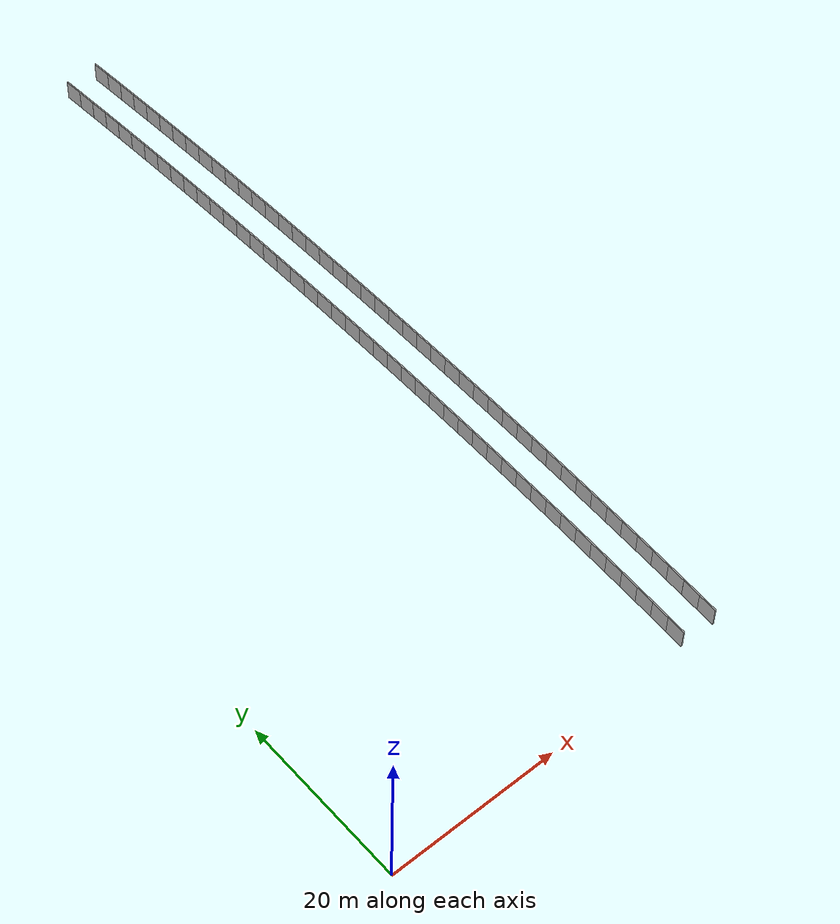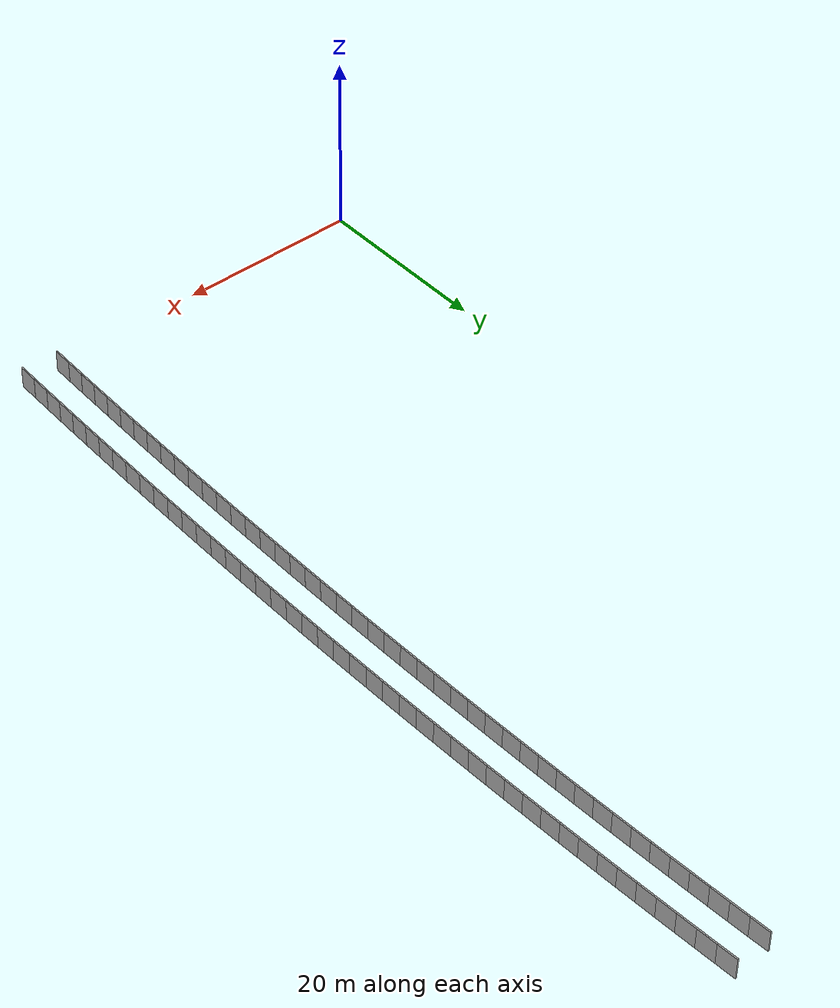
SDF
<?xml version="1.0" ?>
<sdf version="1.6">
  <model name="sps_2312">
    <pose frame="">0 0 0 0 -0 0</pose>
    <static>1</static>
    <self_collide>0</self_collide>
    <allow_auto_disable>0</allow_auto_disable>
    <link name="Wall4572">
      <kinematic>0</kinematic>
      <gravity>1</gravity>
      <self_collide>0</self_collide>
      <collision name="collision">
        <geometry>
          <box>
            <size>2.25462 0.15 2.5</size>
          </box>
        </geometry>
        <pose frame="">0 0 0 0 -0 0</pose>
      </collision>
      <visual name="visual">
        <geometry>
          <box>
            <size>2.25462 0.15 2.5</size>
          </box>
        </geometry>
        <pose frame="">0 0 0 0 -0 0</pose>
        <cast_shadows>1</cast_shadows>
        <transparency>0.0</transparency>
      </visual>
      <pose frame="">41.8405 1.61171 1.25 0 -0 1.53495</pose>
    </link>
    <link name="Wall4573">
      <kinematic>0</kinematic>
      <gravity>1</gravity>
      <self_collide>0</self_collide>
      <collision name="collision">
        <geometry>
          <box>
            <size>2.25468 0.15 2.5</size>
          </box>
        </geometry>
        <pose frame="">0 0 0 0 -0 0</pose>
      </collision>
      <visual name="visual">
        <geometry>
          <box>
            <size>2.25468 0.15 2.5</size>
          </box>
        </geometry>
        <pose frame="">0 0 0 0 -0 0</pose>
        <cast_shadows>1</cast_shadows>
        <transparency>0.0</transparency>
      </visual>
      <pose frame="">41.9187 3.865 1.25 0 -0 1.53728</pose>
    </link>
    <link name="Wall4574">
      <kinematic>0</kinematic>
      <gravity>1</gravity>
      <self_collide>0</self_collide>
      <collision name="collision">
        <geometry>
          <box>
            <size>2.25469 0.15 2.5</size>
          </box>
        </geometry>
        <pose frame="">0 0 0 0 -0 0</pose>
      </collision>
      <visual name="visual">
        <geometry>
          <box>
            <size>2.25469 0.15 2.5</size>
          </box>
        </geometry>
        <pose frame="">0 0 0 0 -0 0</pose>
        <cast_shadows>1</cast_shadows>
        <transparency>0.0</transparency>
      </visual>
      <pose frame="">41.9915 6.11851 1.25 0 -0 1.53966</pose>
    </link>
    <link name="Wall4575">
      <kinematic>0</kinematic>
      <gravity>1</gravity>
      <self_collide>0</self_collide>
      <collision name="collision">
        <geometry>
          <box>
            <size>2.25472 0.15 2.5</size>
          </box>
        </geometry>
        <pose frame="">0 0 0 0 -0 0</pose>
      </collision>
      <visual name="visual">
        <geometry>
          <box>
            <size>2.25472 0.15 2.5</size>
          </box>
        </geometry>
        <pose frame="">0 0 0 0 -0 0</pose>
        <cast_shadows>1</cast_shadows>
        <transparency>0.0</transparency>
      </visual>
      <pose frame="">42.059 8.37221 1.25 0 -0 1.54204</pose>
    </link>
    <link name="Wall4576">
      <kinematic>0</kinematic>
      <gravity>1</gravity>
      <self_collide>0</self_collide>
      <collision name="collision">
        <geometry>
          <box>
            <size>2.25457 0.15 2.5</size>
          </box>
        </geometry>
        <pose frame="">0 0 0 0 -0 0</pose>
      </collision>
      <visual name="visual">
        <geometry>
          <box>
            <size>2.25457 0.15 2.5</size>
          </box>
        </geometry>
        <pose frame="">0 0 0 0 -0 0</pose>
        <cast_shadows>1</cast_shadows>
        <transparency>0.0</transparency>
      </visual>
      <pose frame="">42.1211 10.626 1.25 0 -0 1.54445</pose>
    </link>
    <link name="Wall4577">
      <kinematic>0</kinematic>
      <gravity>1</gravity>
      <self_collide>0</self_collide>
      <collision name="collision">
        <geometry>
          <box>
            <size>2.25468 0.15 2.5</size>
          </box>
        </geometry>
        <pose frame="">0 0 0 0 -0 0</pose>
      </collision>
      <visual name="visual">
        <geometry>
          <box>
            <size>2.25468 0.15 2.5</size>
          </box>
        </geometry>
        <pose frame="">0 0 0 0 -0 0</pose>
        <cast_shadows>1</cast_shadows>
        <transparency>0.0</transparency>
      </visual>
      <pose frame="">42.1779 12.8799 1.25 0 -0 1.54676</pose>
    </link>
    <link name="Wall4578">
      <kinematic>0</kinematic>
      <gravity>1</gravity>
      <self_collide>0</self_collide>
      <collision name="collision">
        <geometry>
          <box>
            <size>2.25449 0.15 2.5</size>
          </box>
        </geometry>
        <pose frame="">0 0 0 0 -0 0</pose>
      </collision>
      <visual name="visual">
        <geometry>
          <box>
            <size>2.25449 0.15 2.5</size>
          </box>
        </geometry>
        <pose frame="">0 0 0 0 -0 0</pose>
        <cast_shadows>1</cast_shadows>
        <transparency>0.0</transparency>
      </visual>
      <pose frame="">42.2294 15.1339 1.25 0 -0 1.54922</pose>
    </link>
    <link name="Wall4579">
      <kinematic>0</kinematic>
      <gravity>1</gravity>
      <self_collide>0</self_collide>
      <collision name="collision">
        <geometry>
          <box>
            <size>2.25462 0.15 2.5</size>
          </box>
        </geometry>
        <pose frame="">0 0 0 0 -0 0</pose>
      </collision>
      <visual name="visual">
        <geometry>
          <box>
            <size>2.25462 0.15 2.5</size>
          </box>
        </geometry>
        <pose frame="">0 0 0 0 -0 0</pose>
        <cast_shadows>1</cast_shadows>
        <transparency>0.0</transparency>
      </visual>
      <pose frame="">42.2753 17.388 1.25 0 -0 1.55166</pose>
    </link>
    <link name="Wall4580">
      <kinematic>0</kinematic>
      <gravity>1</gravity>
      <self_collide>0</self_collide>
      <collision name="collision">
        <geometry>
          <box>
            <size>2.25453 0.15 2.5</size>
          </box>
        </geometry>
        <pose frame="">0 0 0 0 -0 0</pose>
      </collision>
      <visual name="visual">
        <geometry>
          <box>
            <size>2.25453 0.15 2.5</size>
          </box>
        </geometry>
        <pose frame="">0 0 0 0 -0 0</pose>
        <cast_shadows>1</cast_shadows>
        <transparency>0.0</transparency>
      </visual>
      <pose frame="">42.3158 19.6422 1.25 0 -0 1.55401</pose>
    </link>
    <link name="Wall4581">
      <kinematic>0</kinematic>
      <gravity>1</gravity>
      <self_collide>0</self_collide>
      <collision name="collision">
        <geometry>
          <box>
            <size>2.25482 0.15 2.5</size>
          </box>
        </geometry>
        <pose frame="">0 0 0 0 -0 0</pose>
      </collision>
      <visual name="visual">
        <geometry>
          <box>
            <size>2.25482 0.15 2.5</size>
          </box>
        </geometry>
        <pose frame="">0 0 0 0 -0 0</pose>
        <cast_shadows>1</cast_shadows>
        <transparency>0.0</transparency>
      </visual>
      <pose frame="">42.3511 21.8966 1.25 0 -0 1.55626</pose>
    </link>
    <link name="Wall4582">
      <kinematic>0</kinematic>
      <gravity>1</gravity>
      <self_collide>0</self_collide>
      <collision name="collision">
        <geometry>
          <box>
            <size>2.25456 0.15 2.5</size>
          </box>
        </geometry>
        <pose frame="">0 0 0 0 -0 0</pose>
      </collision>
      <visual name="visual">
        <geometry>
          <box>
            <size>2.25456 0.15 2.5</size>
          </box>
        </geometry>
        <pose frame="">0 0 0 0 -0 0</pose>
        <cast_shadows>1</cast_shadows>
        <transparency>0.0</transparency>
      </visual>
      <pose frame="">42.3812 24.1511 1.25 0 -0 1.55864</pose>
    </link>
    <link name="Wall4583">
      <kinematic>0</kinematic>
      <gravity>1</gravity>
      <self_collide>0</self_collide>
      <collision name="collision">
        <geometry>
          <box>
            <size>2.2545 0.15 2.5</size>
          </box>
        </geometry>
        <pose frame="">0 0 0 0 -0 0</pose>
      </collision>
      <visual name="visual">
        <geometry>
          <box>
            <size>2.2545 0.15 2.5</size>
          </box>
        </geometry>
        <pose frame="">0 0 0 0 -0 0</pose>
        <cast_shadows>1</cast_shadows>
        <transparency>0.0</transparency>
      </visual>
      <pose frame="">42.4058 26.4055 1.25 0 -0 1.56113</pose>
    </link>
    <link name="Wall4584">
      <kinematic>0</kinematic>
      <gravity>1</gravity>
      <self_collide>0</self_collide>
      <collision name="collision">
        <geometry>
          <box>
            <size>2.2547 0.15 2.5</size>
          </box>
        </geometry>
        <pose frame="">0 0 0 0 -0 0</pose>
      </collision>
      <visual name="visual">
        <geometry>
          <box>
            <size>2.2547 0.15 2.5</size>
          </box>
        </geometry>
        <pose frame="">0 0 0 0 -0 0</pose>
        <cast_shadows>1</cast_shadows>
        <transparency>0.0</transparency>
      </visual>
      <pose frame="">42.425 28.66 1.25 0 -0 1.56335</pose>
    </link>
    <link name="Wall4585">
      <kinematic>0</kinematic>
      <gravity>1</gravity>
      <self_collide>0</self_collide>
      <collision name="collision">
        <geometry>
          <box>
            <size>2.25442 0.15 2.5</size>
          </box>
        </geometry>
        <pose frame="">0 0 0 0 -0 0</pose>
      </collision>
      <visual name="visual">
        <geometry>
          <box>
            <size>2.25442 0.15 2.5</size>
          </box>
        </geometry>
        <pose frame="">0 0 0 0 -0 0</pose>
        <cast_shadows>1</cast_shadows>
        <transparency>0.0</transparency>
      </visual>
      <pose frame="">42.439 30.9145 1.25 0 -0 1.56581</pose>
    </link>
    <link name="Wall4586">
      <kinematic>0</kinematic>
      <gravity>1</gravity>
      <self_collide>0</self_collide>
      <collision name="collision">
        <geometry>
          <box>
            <size>2.25483 0.15 2.5</size>
          </box>
        </geometry>
        <pose frame="">0 0 0 0 -0 0</pose>
      </collision>
      <visual name="visual">
        <geometry>
          <box>
            <size>2.25483 0.15 2.5</size>
          </box>
        </geometry>
        <pose frame="">0 0 0 0 -0 0</pose>
        <cast_shadows>1</cast_shadows>
        <transparency>0.0</transparency>
      </visual>
      <pose frame="">42.4476 33.1691 1.25 0 -0 1.56822</pose>
    </link>
    <link name="Wall4587">
      <kinematic>0</kinematic>
      <gravity>1</gravity>
      <self_collide>0</self_collide>
      <collision name="collision">
        <geometry>
          <box>
            <size>2.25458 0.15 2.5</size>
          </box>
        </geometry>
        <pose frame="">0 0 0 0 -0 0</pose>
      </collision>
      <visual name="visual">
        <geometry>
          <box>
            <size>2.25458 0.15 2.5</size>
          </box>
        </geometry>
        <pose frame="">0 0 0 0 -0 0</pose>
        <cast_shadows>1</cast_shadows>
        <transparency>0.0</transparency>
      </visual>
      <pose frame="">42.4508 35.4238 1.25 0 -0 1.57053</pose>
    </link>
    <link name="Wall4588">
      <kinematic>0</kinematic>
      <gravity>1</gravity>
      <self_collide>0</self_collide>
      <collision name="collision">
        <geometry>
          <box>
            <size>2.25458 0.15 2.5</size>
          </box>
        </geometry>
        <pose frame="">0 0 0 0 -0 0</pose>
      </collision>
      <visual name="visual">
        <geometry>
          <box>
            <size>2.25458 0.15 2.5</size>
          </box>
        </geometry>
        <pose frame="">0 0 0 0 -0 0</pose>
        <cast_shadows>1</cast_shadows>
        <transparency>0.0</transparency>
      </visual>
      <pose frame="">42.4486 37.6784 1.25 0 -0 1.57302</pose>
    </link>
    <link name="Wall4589">
      <kinematic>0</kinematic>
      <gravity>1</gravity>
      <self_collide>0</self_collide>
      <collision name="collision">
        <geometry>
          <box>
            <size>2.25466 0.15 2.5</size>
          </box>
        </geometry>
        <pose frame="">0 0 0 0 -0 0</pose>
      </collision>
      <visual name="visual">
        <geometry>
          <box>
            <size>2.25466 0.15 2.5</size>
          </box>
        </geometry>
        <pose frame="">0 0 0 0 -0 0</pose>
        <cast_shadows>1</cast_shadows>
        <transparency>0.0</transparency>
      </visual>
      <pose frame="">42.441 39.933 1.25 0 -0 1.57532</pose>
    </link>
    <link name="Wall4590">
      <kinematic>0</kinematic>
      <gravity>1</gravity>
      <self_collide>0</self_collide>
      <collision name="collision">
        <geometry>
          <box>
            <size>2.25463 0.15 2.5</size>
          </box>
        </geometry>
        <pose frame="">0 0 0 0 -0 0</pose>
      </collision>
      <visual name="visual">
        <geometry>
          <box>
            <size>2.25463 0.15 2.5</size>
          </box>
        </geometry>
        <pose frame="">0 0 0 0 -0 0</pose>
        <cast_shadows>1</cast_shadows>
        <transparency>0.0</transparency>
      </visual>
      <pose frame="">42.4282 42.1876 1.25 0 -0 1.57765</pose>
    </link>
    <link name="Wall4591">
      <kinematic>0</kinematic>
      <gravity>1</gravity>
      <self_collide>0</self_collide>
      <collision name="collision">
        <geometry>
          <box>
            <size>2.25449 0.15 2.5</size>
          </box>
        </geometry>
        <pose frame="">0 0 0 0 -0 0</pose>
      </collision>
      <visual name="visual">
        <geometry>
          <box>
            <size>2.25449 0.15 2.5</size>
          </box>
        </geometry>
        <pose frame="">0 0 0 0 -0 0</pose>
        <cast_shadows>1</cast_shadows>
        <transparency>0.0</transparency>
      </visual>
      <pose frame="">42.4099 44.4421 1.25 0 -0 1.58011</pose>
    </link>
    <link name="Wall4592">
      <kinematic>0</kinematic>
      <gravity>1</gravity>
      <self_collide>0</self_collide>
      <collision name="collision">
        <geometry>
          <box>
            <size>2.25473 0.15 2.5</size>
          </box>
        </geometry>
        <pose frame="">0 0 0 0 -0 0</pose>
      </collision>
      <visual name="visual">
        <geometry>
          <box>
            <size>2.25473 0.15 2.5</size>
          </box>
        </geometry>
        <pose frame="">0 0 0 0 -0 0</pose>
        <cast_shadows>1</cast_shadows>
        <transparency>0.0</transparency>
      </visual>
      <pose frame="">42.3863 46.6966 1.25 0 -0 1.58241</pose>
    </link>
    <link name="Wall4593">
      <kinematic>0</kinematic>
      <gravity>1</gravity>
      <self_collide>0</self_collide>
      <collision name="collision">
        <geometry>
          <box>
            <size>2.25444 0.15 2.5</size>
          </box>
        </geometry>
        <pose frame="">0 0 0 0 -0 0</pose>
      </collision>
      <visual name="visual">
        <geometry>
          <box>
            <size>2.25444 0.15 2.5</size>
          </box>
        </geometry>
        <pose frame="">0 0 0 0 -0 0</pose>
        <cast_shadows>1</cast_shadows>
        <transparency>0.0</transparency>
      </visual>
      <pose frame="">42.3573 48.951 1.25 0 -0 1.58498</pose>
    </link>
    <link name="Wall4594">
      <kinematic>0</kinematic>
      <gravity>1</gravity>
      <self_collide>0</self_collide>
      <collision name="collision">
        <geometry>
          <box>
            <size>2.2547 0.15 2.5</size>
          </box>
        </geometry>
        <pose frame="">0 0 0 0 -0 0</pose>
      </collision>
      <visual name="visual">
        <geometry>
          <box>
            <size>2.2547 0.15 2.5</size>
          </box>
        </geometry>
        <pose frame="">0 0 0 0 -0 0</pose>
        <cast_shadows>1</cast_shadows>
        <transparency>0.0</transparency>
      </visual>
      <pose frame="">42.3228 51.2053 1.25 0 -0 1.5872</pose>
    </link>
    <link name="Wall4595">
      <kinematic>0</kinematic>
      <gravity>1</gravity>
      <self_collide>0</self_collide>
      <collision name="collision">
        <geometry>
          <box>
            <size>2.25442 0.15 2.5</size>
          </box>
        </geometry>
        <pose frame="">0 0 0 0 -0 0</pose>
      </collision>
      <visual name="visual">
        <geometry>
          <box>
            <size>2.25442 0.15 2.5</size>
          </box>
        </geometry>
        <pose frame="">0 0 0 0 -0 0</pose>
        <cast_shadows>1</cast_shadows>
        <transparency>0.0</transparency>
      </visual>
      <pose frame="">42.2832 53.4595 1.25 0 -0 1.58953</pose>
    </link>
    <link name="Wall4596">
      <kinematic>0</kinematic>
      <gravity>1</gravity>
      <self_collide>0</self_collide>
      <collision name="collision">
        <geometry>
          <box>
            <size>2.25472 0.15 2.5</size>
          </box>
        </geometry>
        <pose frame="">0 0 0 0 -0 0</pose>
      </collision>
      <visual name="visual">
        <geometry>
          <box>
            <size>2.25472 0.15 2.5</size>
          </box>
        </geometry>
        <pose frame="">0 0 0 0 -0 0</pose>
        <cast_shadows>1</cast_shadows>
        <transparency>0.0</transparency>
      </visual>
      <pose frame="">42.2382 55.7136 1.25 0 -0 1.59199</pose>
    </link>
    <link name="Wall4597">
      <kinematic>0</kinematic>
      <gravity>1</gravity>
      <self_collide>0</self_collide>
      <collision name="collision">
        <geometry>
          <box>
            <size>2.25459 0.15 2.5</size>
          </box>
        </geometry>
        <pose frame="">0 0 0 0 -0 0</pose>
      </collision>
      <visual name="visual">
        <geometry>
          <box>
            <size>2.25459 0.15 2.5</size>
          </box>
        </geometry>
        <pose frame="">0 0 0 0 -0 0</pose>
        <cast_shadows>1</cast_shadows>
        <transparency>0.0</transparency>
      </visual>
      <pose frame="">42.1878 57.9677 1.25 0 -0 1.5943</pose>
    </link>
    <link name="Wall4598">
      <kinematic>0</kinematic>
      <gravity>1</gravity>
      <self_collide>0</self_collide>
      <collision name="collision">
        <geometry>
          <box>
            <size>2.25455 0.15 2.5</size>
          </box>
        </geometry>
        <pose frame="">0 0 0 0 -0 0</pose>
      </collision>
      <visual name="visual">
        <geometry>
          <box>
            <size>2.25455 0.15 2.5</size>
          </box>
        </geometry>
        <pose frame="">0 0 0 0 -0 0</pose>
        <cast_shadows>1</cast_shadows>
        <transparency>0.0</transparency>
      </visual>
      <pose frame="">42.132 60.2216 1.25 0 -0 1.59679</pose>
    </link>
    <link name="Wall4599">
      <kinematic>0</kinematic>
      <gravity>1</gravity>
      <self_collide>0</self_collide>
      <collision name="collision">
        <geometry>
          <box>
            <size>2.25475 0.15 2.5</size>
          </box>
        </geometry>
        <pose frame="">0 0 0 0 -0 0</pose>
      </collision>
      <visual name="visual">
        <geometry>
          <box>
            <size>2.25475 0.15 2.5</size>
          </box>
        </geometry>
        <pose frame="">0 0 0 0 -0 0</pose>
        <cast_shadows>1</cast_shadows>
        <transparency>0.0</transparency>
      </visual>
      <pose frame="">42.0708 62.4754 1.25 0 -0 1.59911</pose>
    </link>
    <link name="Wall4600">
      <kinematic>0</kinematic>
      <gravity>1</gravity>
      <self_collide>0</self_collide>
      <collision name="collision">
        <geometry>
          <box>
            <size>2.25466 0.15 2.5</size>
          </box>
        </geometry>
        <pose frame="">0 0 0 0 -0 0</pose>
      </collision>
      <visual name="visual">
        <geometry>
          <box>
            <size>2.25466 0.15 2.5</size>
          </box>
        </geometry>
        <pose frame="">0 0 0 0 -0 0</pose>
        <cast_shadows>1</cast_shadows>
        <transparency>0.0</transparency>
      </visual>
      <pose frame="">42.0044 64.7291 1.25 0 -0 1.60139</pose>
    </link>
    <link name="Wall4601">
      <kinematic>0</kinematic>
      <gravity>1</gravity>
      <self_collide>0</self_collide>
      <collision name="collision">
        <geometry>
          <box>
            <size>2.25459 0.15 2.5</size>
          </box>
        </geometry>
        <pose frame="">0 0 0 0 -0 0</pose>
      </collision>
      <visual name="visual">
        <geometry>
          <box>
            <size>2.25459 0.15 2.5</size>
          </box>
        </geometry>
        <pose frame="">0 0 0 0 -0 0</pose>
        <cast_shadows>1</cast_shadows>
        <transparency>0.0</transparency>
      </visual>
      <pose frame="">41.9326 66.9826 1.25 0 -0 1.60388</pose>
    </link>
    <link name="Wall4602">
      <kinematic>0</kinematic>
      <gravity>1</gravity>
      <self_collide>0</self_collide>
      <collision name="collision">
        <geometry>
          <box>
            <size>2.25464 0.15 2.5</size>
          </box>
        </geometry>
        <pose frame="">0 0 0 0 -0 0</pose>
      </collision>
      <visual name="visual">
        <geometry>
          <box>
            <size>2.25464 0.15 2.5</size>
          </box>
        </geometry>
        <pose frame="">0 0 0 0 -0 0</pose>
        <cast_shadows>1</cast_shadows>
        <transparency>0.0</transparency>
      </visual>
      <pose frame="">41.8555 69.2359 1.25 0 -0 1.60613</pose>
    </link>
    <link name="Wall4603">
      <kinematic>0</kinematic>
      <gravity>1</gravity>
      <self_collide>0</self_collide>
      <collision name="collision">
        <geometry>
          <box>
            <size>2.2546 0.15 2.5</size>
          </box>
        </geometry>
        <pose frame="">0 0 0 0 -0 0</pose>
      </collision>
      <visual name="visual">
        <geometry>
          <box>
            <size>2.2546 0.15 2.5</size>
          </box>
        </geometry>
        <pose frame="">0 0 0 0 -0 0</pose>
        <cast_shadows>1</cast_shadows>
        <transparency>0.0</transparency>
      </visual>
      <pose frame="">41.773 71.489 1.25 0 -0 1.6086</pose>
    </link>
    <link name="Wall4604">
      <kinematic>0</kinematic>
      <gravity>1</gravity>
      <self_collide>0</self_collide>
      <collision name="collision">
        <geometry>
          <box>
            <size>2.25463 0.15 2.5</size>
          </box>
        </geometry>
        <pose frame="">0 0 0 0 -0 0</pose>
      </collision>
      <visual name="visual">
        <geometry>
          <box>
            <size>2.25463 0.15 2.5</size>
          </box>
        </geometry>
        <pose frame="">0 0 0 0 -0 0</pose>
        <cast_shadows>1</cast_shadows>
        <transparency>0.0</transparency>
      </visual>
      <pose frame="">41.6851 73.7419 1.25 0 -0 1.61098</pose>
    </link>
    <link name="Wall4605">
      <kinematic>0</kinematic>
      <gravity>1</gravity>
      <self_collide>0</self_collide>
      <collision name="collision">
        <geometry>
          <box>
            <size>2.25461 0.15 2.5</size>
          </box>
        </geometry>
        <pose frame="">0 0 0 0 -0 0</pose>
      </collision>
      <visual name="visual">
        <geometry>
          <box>
            <size>2.25461 0.15 2.5</size>
          </box>
        </geometry>
        <pose frame="">0 0 0 0 -0 0</pose>
        <cast_shadows>1</cast_shadows>
        <transparency>0.0</transparency>
      </visual>
      <pose frame="">41.5918 75.9946 1.25 0 -0 1.61339</pose>
    </link>
    <link name="Wall4606">
      <kinematic>0</kinematic>
      <gravity>1</gravity>
      <self_collide>0</self_collide>
      <collision name="collision">
        <geometry>
          <box>
            <size>2.25471 0.15 2.5</size>
          </box>
        </geometry>
        <pose frame="">0 0 0 0 -0 0</pose>
      </collision>
      <visual name="visual">
        <geometry>
          <box>
            <size>2.25471 0.15 2.5</size>
          </box>
        </geometry>
        <pose frame="">0 0 0 0 -0 0</pose>
        <cast_shadows>1</cast_shadows>
        <transparency>0.0</transparency>
      </visual>
      <pose frame="">41.4932 78.2471 1.25 0 -0 1.61569</pose>
    </link>
    <link name="Wall4607">
      <kinematic>0</kinematic>
      <gravity>1</gravity>
      <self_collide>0</self_collide>
      <collision name="collision">
        <geometry>
          <box>
            <size>2.25453 0.15 2.5</size>
          </box>
        </geometry>
        <pose frame="">0 0 0 0 -0 0</pose>
      </collision>
      <visual name="visual">
        <geometry>
          <box>
            <size>2.25453 0.15 2.5</size>
          </box>
        </geometry>
        <pose frame="">0 0 0 0 -0 0</pose>
        <cast_shadows>1</cast_shadows>
        <transparency>0.0</transparency>
      </visual>
      <pose frame="">41.3894 80.4993 1.25 0 -0 1.61808</pose>
    </link>
    <link name="Wall4608">
      <kinematic>0</kinematic>
      <gravity>1</gravity>
      <self_collide>0</self_collide>
      <collision name="collision">
        <geometry>
          <box>
            <size>2.25397 0.15 2.5</size>
          </box>
        </geometry>
        <pose frame="">0 0 0 0 -0 0</pose>
      </collision>
      <visual name="visual">
        <geometry>
          <box>
            <size>2.25397 0.15 2.5</size>
          </box>
        </geometry>
        <pose frame="">0 0 0 0 -0 0</pose>
        <cast_shadows>1</cast_shadows>
        <transparency>0.0</transparency>
      </visual>
      <pose frame="">41.2799 82.7509 1.25 0 -0 1.6207</pose>
    </link>
    <link name="Wall4609">
      <kinematic>0</kinematic>
      <gravity>1</gravity>
      <self_collide>0</self_collide>
      <collision name="collision">
        <geometry>
          <box>
            <size>2.2549 0.15 2.5</size>
          </box>
        </geometry>
        <pose frame="">0 0 0 0 -0 0</pose>
      </collision>
      <visual name="visual">
        <geometry>
          <box>
            <size>2.2549 0.15 2.5</size>
          </box>
        </geometry>
        <pose frame="">0 0 0 0 -0 0</pose>
        <cast_shadows>1</cast_shadows>
        <transparency>0.0</transparency>
      </visual>
      <pose frame="">41.1648 85.0024 1.25 0 -0 1.62298</pose>
    </link>
    <link name="Wall4610">
      <kinematic>0</kinematic>
      <gravity>1</gravity>
      <self_collide>0</self_collide>
      <collision name="collision">
        <geometry>
          <box>
            <size>2.25449 0.15 2.5</size>
          </box>
        </geometry>
        <pose frame="">0 0 0 0 -0 0</pose>
      </collision>
      <visual name="visual">
        <geometry>
          <box>
            <size>2.25449 0.15 2.5</size>
          </box>
        </geometry>
        <pose frame="">0 0 0 0 -0 0</pose>
        <cast_shadows>1</cast_shadows>
        <transparency>0.0</transparency>
      </visual>
      <pose frame="">41.0448 87.2539 1.25 0 -0 1.62519</pose>
    </link>
    <link name="Wall4611">
      <kinematic>0</kinematic>
      <gravity>1</gravity>
      <self_collide>0</self_collide>
      <collision name="collision">
        <geometry>
          <box>
            <size>2.25466 0.15 2.5</size>
          </box>
        </geometry>
        <pose frame="">0 0 0 0 -0 0</pose>
      </collision>
      <visual name="visual">
        <geometry>
          <box>
            <size>2.25466 0.15 2.5</size>
          </box>
        </geometry>
        <pose frame="">0 0 0 0 -0 0</pose>
        <cast_shadows>1</cast_shadows>
        <transparency>0.0</transparency>
      </visual>
      <pose frame="">40.9196 89.505 1.25 0 -0 1.62751</pose>
    </link>
    <link name="Wall4612">
      <kinematic>0</kinematic>
      <gravity>1</gravity>
      <self_collide>0</self_collide>
      <collision name="collision">
        <geometry>
          <box>
            <size>2.25457 0.15 2.5</size>
          </box>
        </geometry>
        <pose frame="">0 0 0 0 -0 0</pose>
      </collision>
      <visual name="visual">
        <geometry>
          <box>
            <size>2.25457 0.15 2.5</size>
          </box>
        </geometry>
        <pose frame="">0 0 0 0 -0 0</pose>
        <cast_shadows>1</cast_shadows>
        <transparency>0.0</transparency>
      </visual>
      <pose frame="">40.7889 91.7558 1.25 0 -0 1.63009</pose>
    </link>
    <link name="Wall4613">
      <kinematic>0</kinematic>
      <gravity>1</gravity>
      <self_collide>0</self_collide>
      <collision name="collision">
        <geometry>
          <box>
            <size>2.25481 0.15 2.5</size>
          </box>
        </geometry>
        <pose frame="">0 0 0 0 -0 0</pose>
      </collision>
      <visual name="visual">
        <geometry>
          <box>
            <size>2.25481 0.15 2.5</size>
          </box>
        </geometry>
        <pose frame="">0 0 0 0 -0 0</pose>
        <cast_shadows>1</cast_shadows>
        <transparency>0.0</transparency>
      </visual>
      <pose frame="">40.6528 94.0064 1.25 0 -0 1.63231</pose>
    </link>
    <link name="Wall4614">
      <kinematic>0</kinematic>
      <gravity>1</gravity>
      <self_collide>0</self_collide>
      <collision name="collision">
        <geometry>
          <box>
            <size>2.25442 0.15 2.5</size>
          </box>
        </geometry>
        <pose frame="">0 0 0 0 -0 0</pose>
      </collision>
      <visual name="visual">
        <geometry>
          <box>
            <size>2.25442 0.15 2.5</size>
          </box>
        </geometry>
        <pose frame="">0 0 0 0 -0 0</pose>
        <cast_shadows>1</cast_shadows>
        <transparency>0.0</transparency>
      </visual>
      <pose frame="">40.5115 96.2566 1.25 0 -0 1.63471</pose>
    </link>
    <link name="Wall4615">
      <kinematic>0</kinematic>
      <gravity>1</gravity>
      <self_collide>0</self_collide>
      <collision name="collision">
        <geometry>
          <box>
            <size>2.25459 0.15 2.5</size>
          </box>
        </geometry>
        <pose frame="">0 0 0 0 -0 0</pose>
      </collision>
      <visual name="visual">
        <geometry>
          <box>
            <size>2.25459 0.15 2.5</size>
          </box>
        </geometry>
        <pose frame="">0 0 0 0 -0 0</pose>
        <cast_shadows>1</cast_shadows>
        <transparency>0.0</transparency>
      </visual>
      <pose frame="">40.3648 98.5063 1.25 0 -0 1.63712</pose>
    </link>
    <link name="Wall6297">
      <kinematic>0</kinematic>
      <gravity>1</gravity>
      <self_collide>0</self_collide>
      <collision name="collision">
        <geometry>
          <box>
            <size>2.24485 0.15 2.5</size>
          </box>
        </geometry>
        <pose frame="">0 0 0 0 -0 0</pose>
      </collision>
      <visual name="visual">
        <geometry>
          <box>
            <size>2.24485 0.15 2.5</size>
          </box>
        </geometry>
        <pose frame="">0 0 0 0 -0 0</pose>
        <cast_shadows>1</cast_shadows>
        <transparency>0.0</transparency>
      </visual>
      <pose frame="">37.7038 1.76021 1.25 0 -0 1.5349</pose>
    </link>
    <link name="Wall6298">
      <kinematic>0</kinematic>
      <gravity>1</gravity>
      <self_collide>0</self_collide>
      <collision name="collision">
        <geometry>
          <box>
            <size>2.24467 0.15 2.5</size>
          </box>
        </geometry>
        <pose frame="">0 0 0 0 -0 0</pose>
      </collision>
      <visual name="visual">
        <geometry>
          <box>
            <size>2.24467 0.15 2.5</size>
          </box>
        </geometry>
        <pose frame="">0 0 0 0 -0 0</pose>
        <cast_shadows>1</cast_shadows>
        <transparency>0.0</transparency>
      </visual>
      <pose frame="">37.7816 4.00362 1.25 0 -0 1.53729</pose>
    </link>
    <link name="Wall6299">
      <kinematic>0</kinematic>
      <gravity>1</gravity>
      <self_collide>0</self_collide>
      <collision name="collision">
        <geometry>
          <box>
            <size>2.24487 0.15 2.5</size>
          </box>
        </geometry>
        <pose frame="">0 0 0 0 -0 0</pose>
      </collision>
      <visual name="visual">
        <geometry>
          <box>
            <size>2.24487 0.15 2.5</size>
          </box>
        </geometry>
        <pose frame="">0 0 0 0 -0 0</pose>
        <cast_shadows>1</cast_shadows>
        <transparency>0.0</transparency>
      </visual>
      <pose frame="">37.8542 6.24721 1.25 0 -0 1.53961</pose>
    </link>
    <link name="Wall6300">
      <kinematic>0</kinematic>
      <gravity>1</gravity>
      <self_collide>0</self_collide>
      <collision name="collision">
        <geometry>
          <box>
            <size>2.2447 0.15 2.5</size>
          </box>
        </geometry>
        <pose frame="">0 0 0 0 -0 0</pose>
      </collision>
      <visual name="visual">
        <geometry>
          <box>
            <size>2.2447 0.15 2.5</size>
          </box>
        </geometry>
        <pose frame="">0 0 0 0 -0 0</pose>
        <cast_shadows>1</cast_shadows>
        <transparency>0.0</transparency>
      </visual>
      <pose frame="">37.9214 8.49098 1.25 0 -0 1.54211</pose>
    </link>
    <link name="Wall6301">
      <kinematic>0</kinematic>
      <gravity>1</gravity>
      <self_collide>0</self_collide>
      <collision name="collision">
        <geometry>
          <box>
            <size>2.24498 0.15 2.5</size>
          </box>
        </geometry>
        <pose frame="">0 0 0 0 -0 0</pose>
      </collision>
      <visual name="visual">
        <geometry>
          <box>
            <size>2.24498 0.15 2.5</size>
          </box>
        </geometry>
        <pose frame="">0 0 0 0 -0 0</pose>
        <cast_shadows>1</cast_shadows>
        <transparency>0.0</transparency>
      </visual>
      <pose frame="">37.9831 10.735 1.25 0 -0 1.5445</pose>
    </link>
    <link name="Wall6302">
      <kinematic>0</kinematic>
      <gravity>1</gravity>
      <self_collide>0</self_collide>
      <collision name="collision">
        <geometry>
          <box>
            <size>2.24467 0.15 2.5</size>
          </box>
        </geometry>
        <pose frame="">0 0 0 0 -0 0</pose>
      </collision>
      <visual name="visual">
        <geometry>
          <box>
            <size>2.24467 0.15 2.5</size>
          </box>
        </geometry>
        <pose frame="">0 0 0 0 -0 0</pose>
        <cast_shadows>1</cast_shadows>
        <transparency>0.0</transparency>
      </visual>
      <pose frame="">38.0397 12.9791 1.25 0 -0 1.54673</pose>
    </link>
    <link name="Wall6303">
      <kinematic>0</kinematic>
      <gravity>1</gravity>
      <self_collide>0</self_collide>
      <collision name="collision">
        <geometry>
          <box>
            <size>2.24472 0.15 2.5</size>
          </box>
        </geometry>
        <pose frame="">0 0 0 0 -0 0</pose>
      </collision>
      <visual name="visual">
        <geometry>
          <box>
            <size>2.24472 0.15 2.5</size>
          </box>
        </geometry>
        <pose frame="">0 0 0 0 -0 0</pose>
        <cast_shadows>1</cast_shadows>
        <transparency>0.0</transparency>
      </visual>
      <pose frame="">38.0909 15.2232 1.25 0 -0 1.54923</pose>
    </link>
    <link name="Wall6304">
      <kinematic>0</kinematic>
      <gravity>1</gravity>
      <self_collide>0</self_collide>
      <collision name="collision">
        <geometry>
          <box>
            <size>2.2448 0.15 2.5</size>
          </box>
        </geometry>
        <pose frame="">0 0 0 0 -0 0</pose>
      </collision>
      <visual name="visual">
        <geometry>
          <box>
            <size>2.2448 0.15 2.5</size>
          </box>
        </geometry>
        <pose frame="">0 0 0 0 -0 0</pose>
        <cast_shadows>1</cast_shadows>
        <transparency>0.0</transparency>
      </visual>
      <pose frame="">38.1366 17.4675 1.25 0 -0 1.55157</pose>
    </link>
    <link name="Wall6305">
      <kinematic>0</kinematic>
      <gravity>1</gravity>
      <self_collide>0</self_collide>
      <collision name="collision">
        <geometry>
          <box>
            <size>2.24452 0.15 2.5</size>
          </box>
        </geometry>
        <pose frame="">0 0 0 0 -0 0</pose>
      </collision>
      <visual name="visual">
        <geometry>
          <box>
            <size>2.24452 0.15 2.5</size>
          </box>
        </geometry>
        <pose frame="">0 0 0 0 -0 0</pose>
        <cast_shadows>1</cast_shadows>
        <transparency>0.0</transparency>
      </visual>
      <pose frame="">38.1771 19.7118 1.25 0 -0 1.55394</pose>
    </link>
    <link name="Wall6306">
      <kinematic>0</kinematic>
      <gravity>1</gravity>
      <self_collide>0</self_collide>
      <collision name="collision">
        <geometry>
          <box>
            <size>2.24505 0.15 2.5</size>
          </box>
        </geometry>
        <pose frame="">0 0 0 0 -0 0</pose>
      </collision>
      <visual name="visual">
        <geometry>
          <box>
            <size>2.24505 0.15 2.5</size>
          </box>
        </geometry>
        <pose frame="">0 0 0 0 -0 0</pose>
        <cast_shadows>1</cast_shadows>
        <transparency>0.0</transparency>
      </visual>
      <pose frame="">38.2124 21.9563 1.25 0 -0 1.55628</pose>
    </link>
    <link name="Wall6307">
      <kinematic>0</kinematic>
      <gravity>1</gravity>
      <self_collide>0</self_collide>
      <collision name="collision">
        <geometry>
          <box>
            <size>2.24479 0.15 2.5</size>
          </box>
        </geometry>
        <pose frame="">0 0 0 0 -0 0</pose>
      </collision>
      <visual name="visual">
        <geometry>
          <box>
            <size>2.24479 0.15 2.5</size>
          </box>
        </geometry>
        <pose frame="">0 0 0 0 -0 0</pose>
        <cast_shadows>1</cast_shadows>
        <transparency>0.0</transparency>
      </visual>
      <pose frame="">38.2421 24.201 1.25 0 -0 1.55878</pose>
    </link>
    <link name="Wall6308">
      <kinematic>0</kinematic>
      <gravity>1</gravity>
      <self_collide>0</self_collide>
      <collision name="collision">
        <geometry>
          <box>
            <size>2.24468 0.15 2.5</size>
          </box>
        </geometry>
        <pose frame="">0 0 0 0 -0 0</pose>
      </collision>
      <visual name="visual">
        <geometry>
          <box>
            <size>2.24468 0.15 2.5</size>
          </box>
        </geometry>
        <pose frame="">0 0 0 0 -0 0</pose>
        <cast_shadows>1</cast_shadows>
        <transparency>0.0</transparency>
      </visual>
      <pose frame="">38.2667 26.4456 1.25 0 -0 1.56098</pose>
    </link>
    <link name="Wall6309">
      <kinematic>0</kinematic>
      <gravity>1</gravity>
      <self_collide>0</self_collide>
      <collision name="collision">
        <geometry>
          <box>
            <size>2.24487 0.15 2.5</size>
          </box>
        </geometry>
        <pose frame="">0 0 0 0 -0 0</pose>
      </collision>
      <visual name="visual">
        <geometry>
          <box>
            <size>2.24487 0.15 2.5</size>
          </box>
        </geometry>
        <pose frame="">0 0 0 0 -0 0</pose>
        <cast_shadows>1</cast_shadows>
        <transparency>0.0</transparency>
      </visual>
      <pose frame="">38.2858 28.6903 1.25 0 -0 1.56351</pose>
    </link>
    <link name="Wall6310">
      <kinematic>0</kinematic>
      <gravity>1</gravity>
      <self_collide>0</self_collide>
      <collision name="collision">
        <geometry>
          <box>
            <size>2.2446 0.15 2.5</size>
          </box>
        </geometry>
        <pose frame="">0 0 0 0 -0 0</pose>
      </collision>
      <visual name="visual">
        <geometry>
          <box>
            <size>2.2446 0.15 2.5</size>
          </box>
        </geometry>
        <pose frame="">0 0 0 0 -0 0</pose>
        <cast_shadows>1</cast_shadows>
        <transparency>0.0</transparency>
      </visual>
      <pose frame="">38.2996 30.935 1.25 0 -0 1.56579</pose>
    </link>
    <link name="Wall6311">
      <kinematic>0</kinematic>
      <gravity>1</gravity>
      <self_collide>0</self_collide>
      <collision name="collision">
        <geometry>
          <box>
            <size>2.24482 0.15 2.5</size>
          </box>
        </geometry>
        <pose frame="">0 0 0 0 -0 0</pose>
      </collision>
      <visual name="visual">
        <geometry>
          <box>
            <size>2.24482 0.15 2.5</size>
          </box>
        </geometry>
        <pose frame="">0 0 0 0 -0 0</pose>
        <cast_shadows>1</cast_shadows>
        <transparency>0.0</transparency>
      </visual>
      <pose frame="">38.3082 33.1797 1.25 0 -0 1.56821</pose>
    </link>
    <link name="Wall6312">
      <kinematic>0</kinematic>
      <gravity>1</gravity>
      <self_collide>0</self_collide>
      <collision name="collision">
        <geometry>
          <box>
            <size>2.245 0.15 2.5</size>
          </box>
        </geometry>
        <pose frame="">0 0 0 0 -0 0</pose>
      </collision>
      <visual name="visual">
        <geometry>
          <box>
            <size>2.245 0.15 2.5</size>
          </box>
        </geometry>
        <pose frame="">0 0 0 0 -0 0</pose>
        <cast_shadows>1</cast_shadows>
        <transparency>0.0</transparency>
      </visual>
      <pose frame="">38.3114 35.4246 1.25 0 -0 1.57052</pose>
    </link>
    <link name="Wall6313">
      <kinematic>0</kinematic>
      <gravity>1</gravity>
      <self_collide>0</self_collide>
      <collision name="collision">
        <geometry>
          <box>
            <size>2.24463 0.15 2.5</size>
          </box>
        </geometry>
        <pose frame="">0 0 0 0 -0 0</pose>
      </collision>
      <visual name="visual">
        <geometry>
          <box>
            <size>2.24463 0.15 2.5</size>
          </box>
        </geometry>
        <pose frame="">0 0 0 0 -0 0</pose>
        <cast_shadows>1</cast_shadows>
        <transparency>0.0</transparency>
      </visual>
      <pose frame="">38.3093 37.6694 1.25 0 -0 1.57294</pose>
    </link>
    <link name="Wall6314">
      <kinematic>0</kinematic>
      <gravity>1</gravity>
      <self_collide>0</self_collide>
      <collision name="collision">
        <geometry>
          <box>
            <size>2.24484 0.15 2.5</size>
          </box>
        </geometry>
        <pose frame="">0 0 0 0 -0 0</pose>
      </collision>
      <visual name="visual">
        <geometry>
          <box>
            <size>2.24484 0.15 2.5</size>
          </box>
        </geometry>
        <pose frame="">0 0 0 0 -0 0</pose>
        <cast_shadows>1</cast_shadows>
        <transparency>0.0</transparency>
      </visual>
      <pose frame="">38.3017 39.9141 1.25 0 -0 1.57534</pose>
    </link>
    <link name="Wall6315">
      <kinematic>0</kinematic>
      <gravity>1</gravity>
      <self_collide>0</self_collide>
      <collision name="collision">
        <geometry>
          <box>
            <size>2.24462 0.15 2.5</size>
          </box>
        </geometry>
        <pose frame="">0 0 0 0 -0 0</pose>
      </collision>
      <visual name="visual">
        <geometry>
          <box>
            <size>2.24462 0.15 2.5</size>
          </box>
        </geometry>
        <pose frame="">0 0 0 0 -0 0</pose>
        <cast_shadows>1</cast_shadows>
        <transparency>0.0</transparency>
      </visual>
      <pose frame="">38.289 42.1588 1.25 0 -0 1.57765</pose>
    </link>
    <link name="Wall6316">
      <kinematic>0</kinematic>
      <gravity>1</gravity>
      <self_collide>0</self_collide>
      <collision name="collision">
        <geometry>
          <box>
            <size>2.24491 0.15 2.5</size>
          </box>
        </geometry>
        <pose frame="">0 0 0 0 -0 0</pose>
      </collision>
      <visual name="visual">
        <geometry>
          <box>
            <size>2.24491 0.15 2.5</size>
          </box>
        </geometry>
        <pose frame="">0 0 0 0 -0 0</pose>
        <cast_shadows>1</cast_shadows>
        <transparency>0.0</transparency>
      </visual>
      <pose frame="">38.2708 44.4035 1.25 0 -0 1.58015</pose>
    </link>
    <link name="Wall6317">
      <kinematic>0</kinematic>
      <gravity>1</gravity>
      <self_collide>0</self_collide>
      <collision name="collision">
        <geometry>
          <box>
            <size>2.24478 0.15 2.5</size>
          </box>
        </geometry>
        <pose frame="">0 0 0 0 -0 0</pose>
      </collision>
      <visual name="visual">
        <geometry>
          <box>
            <size>2.24478 0.15 2.5</size>
          </box>
        </geometry>
        <pose frame="">0 0 0 0 -0 0</pose>
        <cast_shadows>1</cast_shadows>
        <transparency>0.0</transparency>
      </visual>
      <pose frame="">38.2472 46.6482 1.25 0 -0 1.58249</pose>
    </link>
    <link name="Wall6318">
      <kinematic>0</kinematic>
      <gravity>1</gravity>
      <self_collide>0</self_collide>
      <collision name="collision">
        <geometry>
          <box>
            <size>2.24479 0.15 2.5</size>
          </box>
        </geometry>
        <pose frame="">0 0 0 0 -0 0</pose>
      </collision>
      <visual name="visual">
        <geometry>
          <box>
            <size>2.24479 0.15 2.5</size>
          </box>
        </geometry>
        <pose frame="">0 0 0 0 -0 0</pose>
        <cast_shadows>1</cast_shadows>
        <transparency>0.0</transparency>
      </visual>
      <pose frame="">38.2183 48.8928 1.25 0 -0 1.58485</pose>
    </link>
    <link name="Wall6319">
      <kinematic>0</kinematic>
      <gravity>1</gravity>
      <self_collide>0</self_collide>
      <collision name="collision">
        <geometry>
          <box>
            <size>2.24469 0.15 2.5</size>
          </box>
        </geometry>
        <pose frame="">0 0 0 0 -0 0</pose>
      </collision>
      <visual name="visual">
        <geometry>
          <box>
            <size>2.24469 0.15 2.5</size>
          </box>
        </geometry>
        <pose frame="">0 0 0 0 -0 0</pose>
        <cast_shadows>1</cast_shadows>
        <transparency>0.0</transparency>
      </visual>
      <pose frame="">38.1841 51.1373 1.25 0 -0 1.58719</pose>
    </link>
    <link name="Wall6320">
      <kinematic>0</kinematic>
      <gravity>1</gravity>
      <self_collide>0</self_collide>
      <collision name="collision">
        <geometry>
          <box>
            <size>2.2446 0.15 2.5</size>
          </box>
        </geometry>
        <pose frame="">0 0 0 0 -0 0</pose>
      </collision>
      <visual name="visual">
        <geometry>
          <box>
            <size>2.2446 0.15 2.5</size>
          </box>
        </geometry>
        <pose frame="">0 0 0 0 -0 0</pose>
        <cast_shadows>1</cast_shadows>
        <transparency>0.0</transparency>
      </visual>
      <pose frame="">38.1446 53.3816 1.25 0 -0 1.58961</pose>
    </link>
    <link name="Wall6321">
      <kinematic>0</kinematic>
      <gravity>1</gravity>
      <self_collide>0</self_collide>
      <collision name="collision">
        <geometry>
          <box>
            <size>2.2447 0.15 2.5</size>
          </box>
        </geometry>
        <pose frame="">0 0 0 0 -0 0</pose>
      </collision>
      <visual name="visual">
        <geometry>
          <box>
            <size>2.2447 0.15 2.5</size>
          </box>
        </geometry>
        <pose frame="">0 0 0 0 -0 0</pose>
        <cast_shadows>1</cast_shadows>
        <transparency>0.0</transparency>
      </visual>
      <pose frame="">38.0998 55.6258 1.25 0 -0 1.5919</pose>
    </link>
    <link name="Wall6322">
      <kinematic>0</kinematic>
      <gravity>1</gravity>
      <self_collide>0</self_collide>
      <collision name="collision">
        <geometry>
          <box>
            <size>2.24483 0.15 2.5</size>
          </box>
        </geometry>
        <pose frame="">0 0 0 0 -0 0</pose>
      </collision>
      <visual name="visual">
        <geometry>
          <box>
            <size>2.24483 0.15 2.5</size>
          </box>
        </geometry>
        <pose frame="">0 0 0 0 -0 0</pose>
        <cast_shadows>1</cast_shadows>
        <transparency>0.0</transparency>
      </visual>
      <pose frame="">38.0496 57.87 1.25 0 -0 1.59443</pose>
    </link>
    <link name="Wall6323">
      <kinematic>0</kinematic>
      <gravity>1</gravity>
      <self_collide>0</self_collide>
      <collision name="collision">
        <geometry>
          <box>
            <size>2.24495 0.15 2.5</size>
          </box>
        </geometry>
        <pose frame="">0 0 0 0 -0 0</pose>
      </collision>
      <visual name="visual">
        <geometry>
          <box>
            <size>2.24495 0.15 2.5</size>
          </box>
        </geometry>
        <pose frame="">0 0 0 0 -0 0</pose>
        <cast_shadows>1</cast_shadows>
        <transparency>0.0</transparency>
      </visual>
      <pose frame="">37.994 60.1142 1.25 0 -0 1.59663</pose>
    </link>
    <link name="Wall6324">
      <kinematic>0</kinematic>
      <gravity>1</gravity>
      <self_collide>0</self_collide>
      <collision name="collision">
        <geometry>
          <box>
            <size>2.24473 0.15 2.5</size>
          </box>
        </geometry>
        <pose frame="">0 0 0 0 -0 0</pose>
      </collision>
      <visual name="visual">
        <geometry>
          <box>
            <size>2.24473 0.15 2.5</size>
          </box>
        </geometry>
        <pose frame="">0 0 0 0 -0 0</pose>
        <cast_shadows>1</cast_shadows>
        <transparency>0.0</transparency>
      </visual>
      <pose frame="">37.9333 62.3582 1.25 0 -0 1.59905</pose>
    </link>
    <link name="Wall6325">
      <kinematic>0</kinematic>
      <gravity>1</gravity>
      <self_collide>0</self_collide>
      <collision name="collision">
        <geometry>
          <box>
            <size>2.24465 0.15 2.5</size>
          </box>
        </geometry>
        <pose frame="">0 0 0 0 -0 0</pose>
      </collision>
      <visual name="visual">
        <geometry>
          <box>
            <size>2.24465 0.15 2.5</size>
          </box>
        </geometry>
        <pose frame="">0 0 0 0 -0 0</pose>
        <cast_shadows>1</cast_shadows>
        <transparency>0.0</transparency>
      </visual>
      <pose frame="">37.8671 64.6019 1.25 0 -0 1.60153</pose>
    </link>
    <link name="Wall6326">
      <kinematic>0</kinematic>
      <gravity>1</gravity>
      <self_collide>0</self_collide>
      <collision name="collision">
        <geometry>
          <box>
            <size>2.245 0.15 2.5</size>
          </box>
        </geometry>
        <pose frame="">0 0 0 0 -0 0</pose>
      </collision>
      <visual name="visual">
        <geometry>
          <box>
            <size>2.245 0.15 2.5</size>
          </box>
        </geometry>
        <pose frame="">0 0 0 0 -0 0</pose>
        <cast_shadows>1</cast_shadows>
        <transparency>0.0</transparency>
      </visual>
      <pose frame="">37.7956 66.8456 1.25 0 -0 1.60386</pose>
    </link>
    <link name="Wall6327">
      <kinematic>0</kinematic>
      <gravity>1</gravity>
      <self_collide>0</self_collide>
      <collision name="collision">
        <geometry>
          <box>
            <size>2.24464 0.15 2.5</size>
          </box>
        </geometry>
        <pose frame="">0 0 0 0 -0 0</pose>
      </collision>
      <visual name="visual">
        <geometry>
          <box>
            <size>2.24464 0.15 2.5</size>
          </box>
        </geometry>
        <pose frame="">0 0 0 0 -0 0</pose>
        <cast_shadows>1</cast_shadows>
        <transparency>0.0</transparency>
      </visual>
      <pose frame="">37.7187 69.0891 1.25 0 -0 1.60626</pose>
    </link>
    <link name="Wall6328">
      <kinematic>0</kinematic>
      <gravity>1</gravity>
      <self_collide>0</self_collide>
      <collision name="collision">
        <geometry>
          <box>
            <size>2.245 0.15 2.5</size>
          </box>
        </geometry>
        <pose frame="">0 0 0 0 -0 0</pose>
      </collision>
      <visual name="visual">
        <geometry>
          <box>
            <size>2.245 0.15 2.5</size>
          </box>
        </geometry>
        <pose frame="">0 0 0 0 -0 0</pose>
        <cast_shadows>1</cast_shadows>
        <transparency>0.0</transparency>
      </visual>
      <pose frame="">37.6366 71.3324 1.25 0 -0 1.60849</pose>
    </link>
    <link name="Wall6329">
      <kinematic>0</kinematic>
      <gravity>1</gravity>
      <self_collide>0</self_collide>
      <collision name="collision">
        <geometry>
          <box>
            <size>2.24461 0.15 2.5</size>
          </box>
        </geometry>
        <pose frame="">0 0 0 0 -0 0</pose>
      </collision>
      <visual name="visual">
        <geometry>
          <box>
            <size>2.24461 0.15 2.5</size>
          </box>
        </geometry>
        <pose frame="">0 0 0 0 -0 0</pose>
        <cast_shadows>1</cast_shadows>
        <transparency>0.0</transparency>
      </visual>
      <pose frame="">37.5492 73.5755 1.25 0 -0 1.611</pose>
    </link>
    <link name="Wall6330">
      <kinematic>0</kinematic>
      <gravity>1</gravity>
      <self_collide>0</self_collide>
      <collision name="collision">
        <geometry>
          <box>
            <size>2.24502 0.15 2.5</size>
          </box>
        </geometry>
        <pose frame="">0 0 0 0 -0 0</pose>
      </collision>
      <visual name="visual">
        <geometry>
          <box>
            <size>2.24502 0.15 2.5</size>
          </box>
        </geometry>
        <pose frame="">0 0 0 0 -0 0</pose>
        <cast_shadows>1</cast_shadows>
        <transparency>0.0</transparency>
      </visual>
      <pose frame="">37.4563 75.8184 1.25 0 -0 1.61338</pose>
    </link>
    <link name="Wall6331">
      <kinematic>0</kinematic>
      <gravity>1</gravity>
      <self_collide>0</self_collide>
      <collision name="collision">
        <geometry>
          <box>
            <size>2.24445 0.15 2.5</size>
          </box>
        </geometry>
        <pose frame="">0 0 0 0 -0 0</pose>
      </collision>
      <visual name="visual">
        <geometry>
          <box>
            <size>2.24445 0.15 2.5</size>
          </box>
        </geometry>
        <pose frame="">0 0 0 0 -0 0</pose>
        <cast_shadows>1</cast_shadows>
        <transparency>0.0</transparency>
      </visual>
      <pose frame="">37.3581 78.061 1.25 0 -0 1.61574</pose>
    </link>
    <link name="Wall6332">
      <kinematic>0</kinematic>
      <gravity>1</gravity>
      <self_collide>0</self_collide>
      <collision name="collision">
        <geometry>
          <box>
            <size>2.24493 0.15 2.5</size>
          </box>
        </geometry>
        <pose frame="">0 0 0 0 -0 0</pose>
      </collision>
      <visual name="visual">
        <geometry>
          <box>
            <size>2.24493 0.15 2.5</size>
          </box>
        </geometry>
        <pose frame="">0 0 0 0 -0 0</pose>
        <cast_shadows>1</cast_shadows>
        <transparency>0.0</transparency>
      </visual>
      <pose frame="">37.2547 80.3033 1.25 0 -0 1.61801</pose>
    </link>
    <link name="Wall6333">
      <kinematic>0</kinematic>
      <gravity>1</gravity>
      <self_collide>0</self_collide>
      <collision name="collision">
        <geometry>
          <box>
            <size>2.24419 0.15 2.5</size>
          </box>
        </geometry>
        <pose frame="">0 0 0 0 -0 0</pose>
      </collision>
      <visual name="visual">
        <geometry>
          <box>
            <size>2.24419 0.15 2.5</size>
          </box>
        </geometry>
        <pose frame="">0 0 0 0 -0 0</pose>
        <cast_shadows>1</cast_shadows>
        <transparency>0.0</transparency>
      </visual>
      <pose frame="">37.1457 82.5452 1.25 0 -0 1.62072</pose>
    </link>
    <link name="Wall6334">
      <kinematic>0</kinematic>
      <gravity>1</gravity>
      <self_collide>0</self_collide>
      <collision name="collision">
        <geometry>
          <box>
            <size>2.24481 0.15 2.5</size>
          </box>
        </geometry>
        <pose frame="">0 0 0 0 -0 0</pose>
      </collision>
      <visual name="visual">
        <geometry>
          <box>
            <size>2.24481 0.15 2.5</size>
          </box>
        </geometry>
        <pose frame="">0 0 0 0 -0 0</pose>
        <cast_shadows>1</cast_shadows>
        <transparency>0.0</transparency>
      </visual>
      <pose frame="">37.0312 84.7868 1.25 0 -0 1.62294</pose>
    </link>
    <link name="Wall6335">
      <kinematic>0</kinematic>
      <gravity>1</gravity>
      <self_collide>0</self_collide>
      <collision name="collision">
        <geometry>
          <box>
            <size>2.24477 0.15 2.5</size>
          </box>
        </geometry>
        <pose frame="">0 0 0 0 -0 0</pose>
      </collision>
      <visual name="visual">
        <geometry>
          <box>
            <size>2.24477 0.15 2.5</size>
          </box>
        </geometry>
        <pose frame="">0 0 0 0 -0 0</pose>
        <cast_shadows>1</cast_shadows>
        <transparency>0.0</transparency>
      </visual>
      <pose frame="">36.9117 87.0284 1.25 0 -0 1.62518</pose>
    </link>
    <link name="Wall6336">
      <kinematic>0</kinematic>
      <gravity>1</gravity>
      <self_collide>0</self_collide>
      <collision name="collision">
        <geometry>
          <box>
            <size>2.24478 0.15 2.5</size>
          </box>
        </geometry>
        <pose frame="">0 0 0 0 -0 0</pose>
      </collision>
      <visual name="visual">
        <geometry>
          <box>
            <size>2.24478 0.15 2.5</size>
          </box>
        </geometry>
        <pose frame="">0 0 0 0 -0 0</pose>
        <cast_shadows>1</cast_shadows>
        <transparency>0.0</transparency>
      </visual>
      <pose frame="">36.7869 89.2697 1.25 0 -0 1.62768</pose>
    </link>
    <link name="Wall6337">
      <kinematic>0</kinematic>
      <gravity>1</gravity>
      <self_collide>0</self_collide>
      <collision name="collision">
        <geometry>
          <box>
            <size>2.24495 0.15 2.5</size>
          </box>
        </geometry>
        <pose frame="">0 0 0 0 -0 0</pose>
      </collision>
      <visual name="visual">
        <geometry>
          <box>
            <size>2.24495 0.15 2.5</size>
          </box>
        </geometry>
        <pose frame="">0 0 0 0 -0 0</pose>
        <cast_shadows>1</cast_shadows>
        <transparency>0.0</transparency>
      </visual>
      <pose frame="">36.6568 91.5108 1.25 0 -0 1.62988</pose>
    </link>
    <link name="Wall6338">
      <kinematic>0</kinematic>
      <gravity>1</gravity>
      <self_collide>0</self_collide>
      <collision name="collision">
        <geometry>
          <box>
            <size>2.24468 0.15 2.5</size>
          </box>
        </geometry>
        <pose frame="">0 0 0 0 -0 0</pose>
      </collision>
      <visual name="visual">
        <geometry>
          <box>
            <size>2.24468 0.15 2.5</size>
          </box>
        </geometry>
        <pose frame="">0 0 0 0 -0 0</pose>
        <cast_shadows>1</cast_shadows>
        <transparency>0.0</transparency>
      </visual>
      <pose frame="">36.5214 93.7515 1.25 0 -0 1.63242</pose>
    </link>
    <link name="Wall6339">
      <kinematic>0</kinematic>
      <gravity>1</gravity>
      <self_collide>0</self_collide>
      <collision name="collision">
        <geometry>
          <box>
            <size>2.24476 0.15 2.5</size>
          </box>
        </geometry>
        <pose frame="">0 0 0 0 -0 0</pose>
      </collision>
      <visual name="visual">
        <geometry>
          <box>
            <size>2.24476 0.15 2.5</size>
          </box>
        </geometry>
        <pose frame="">0 0 0 0 -0 0</pose>
        <cast_shadows>1</cast_shadows>
        <transparency>0.0</transparency>
      </visual>
      <pose frame="">36.3805 95.9918 1.25 0 -0 1.63471</pose>
    </link>
    <link name="Wall6340">
      <kinematic>0</kinematic>
      <gravity>1</gravity>
      <self_collide>0</self_collide>
      <collision name="collision">
        <geometry>
          <box>
            <size>2.24474 0.15 2.5</size>
          </box>
        </geometry>
        <pose frame="">0 0 0 0 -0 0</pose>
      </collision>
      <visual name="visual">
        <geometry>
          <box>
            <size>2.24474 0.15 2.5</size>
          </box>
        </geometry>
        <pose frame="">0 0 0 0 -0 0</pose>
        <cast_shadows>1</cast_shadows>
        <transparency>0.0</transparency>
      </visual>
      <pose frame="">36.2345 98.2318 1.25 0 -0 1.63713</pose>
    </link>
  </model>
</sdf>
